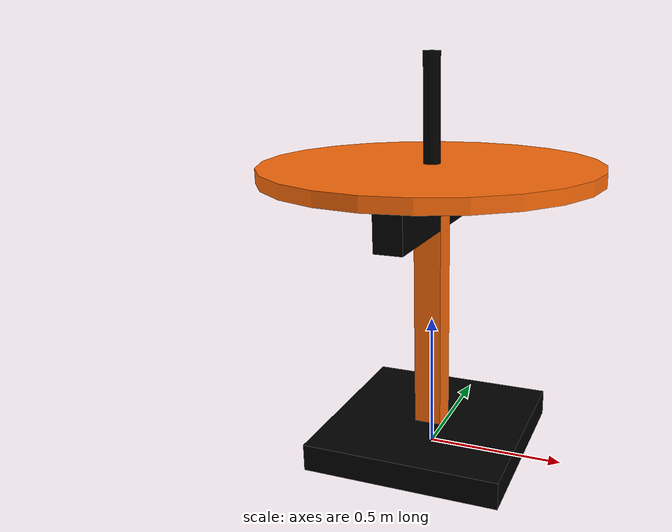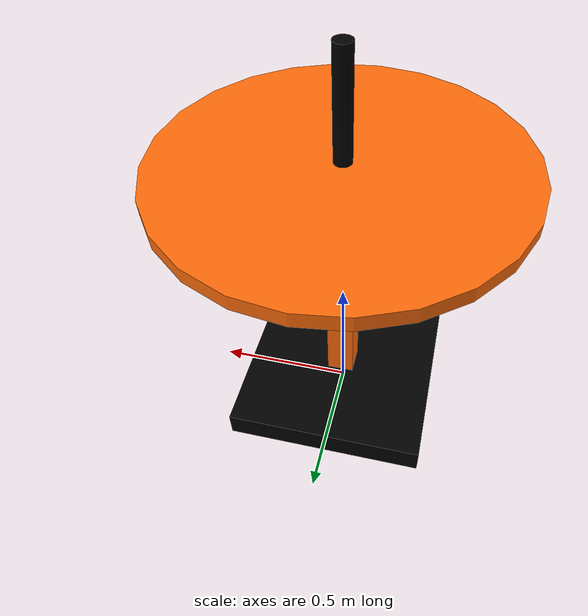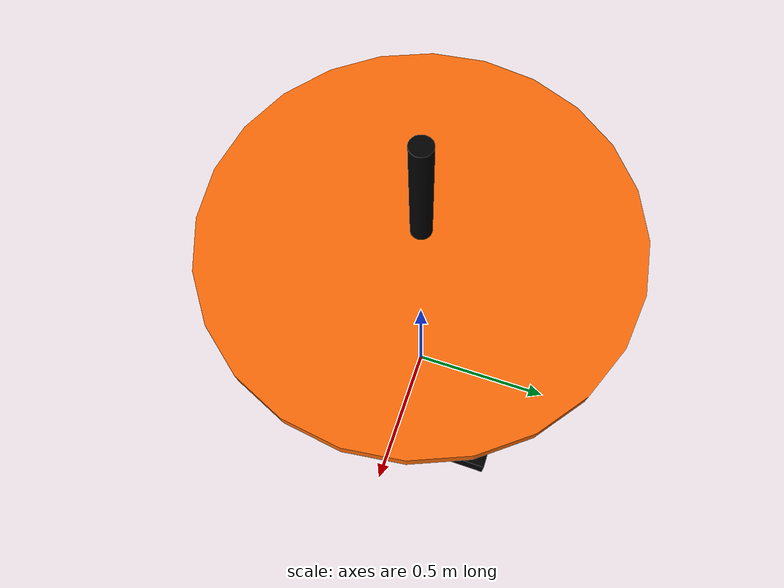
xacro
<?xml version="1.0"?>
<!-- Revolute-Revolute Manipulator -->
<robot name="antenna" xmlns:xacro="http://www.ros.org/wiki/xacro">

  <!-- Constants for robot dimensions -->
  <xacro:property name="PI" value="3.1415926535897931"/>
  <xacro:property name="mass" value="1" /> <!-- arbitrary value for mass -->
  <xacro:property name="width" value="0.1" /> <!-- Square dimensions (widthxwidth) of beams -->
  <xacro:property name="height1" value="2" /> <!-- Link 1 -->
  <xacro:property name="height2" value="1" /> <!-- Link 2 -->
  <xacro:property name="height3" value="1" /> <!-- Link 3 -->
  <xacro:property name="axel_offset" value="0.05" /> <!-- Space btw top of beam and the each joint -->

  <!-- Import all Gazebo-customization elements, including Gazebo colors -->
  <xacro:include filename="$(find antenna_description)/urdf/antenna.gazebo" />
  <!-- Import Rviz colors -->
  <xacro:include filename="$(find antenna_description)/urdf/materials.xacro" />

  <!-- Used for fixing robot to Gazebo 'base_link' -->
  <link name="world"/>

  <joint name="fixed" type="fixed">
    <parent link="world"/>
    <child link="link1"/>
  </joint>

  <!-- Base Link -->
  <link name="link1">
    <collision>
      <origin xyz="0 0 0.05" rpy="0 0 0"/>
      <geometry>
	<box size="0.72 0.72 0.1"/>
      </geometry>
    </collision>

    <visual>
      <origin xyz="0 0 0.05" rpy="0 0 0"/>
      <geometry>
	<box size="0.72 0.72 0.1"/>
      </geometry>
      <material name="black"/>
    </visual>

    <inertial>
      <origin xyz="0 0 0.05" rpy="0 0 0"/>
      <mass value="${mass}"/>
      <inertia
	  ixx="1" ixy="0.0" ixz="0.0"
	  iyy="1" iyz="0.0"
	  izz="1"/>
    </inertial>
  </link>

  <joint name="joint1" type="continuous">
    <parent link="link1"/>
    <child link="link2"/>
    <origin xyz="0 0 0.5" rpy="0 0 0"/>
    <axis xyz="0 0 1"/>
    <dynamics damping="0.7"/>
  </joint>

  <!-- Middle Link -->
  <link name="link2">
    <collision>
      <origin xyz="0 0 0" rpy="0 0 0"/>
      <geometry>
	<box size="0.1 0.1 0.8"/>
      </geometry>
    </collision>

    <visual>
      <origin xyz="0 0 0" rpy="0 0 0"/>
      <geometry>
	<box size="0.1 0.1 0.8"/>
      </geometry>
      <material name="orange"/>
    </visual>

    <inertial>
      <origin xyz="0 0 0.4" rpy="0 0 0"/>
      <mass value="4.69"/>
      <inertia
	  ixx="0.25" ixy="0.0" ixz="0.0"
	  iyy="0.25" iyz="0.0"
	  izz="0.006"/>
    </inertial>
  </link>

  <joint name="joint2" type="revolute">
    <parent link="link2"/>
    <child link="link3"/>
    <origin xyz="0 0 0.45" rpy="0 0 0"/>
    <axis xyz="0 1 0"/>
    <limit effort="30" lower="-1.571" upper="1.571" velocity="1.571"/>
    <dynamics damping="0.7"/>
  </joint>

  <!-- Top Link -->
  <link name="link3">
    <collision>
      <origin xyz="0 0 0" rpy="0 0 0"/>
      <geometry>
	<box size="0.1 0.8 0.2"/>
      </geometry>
    </collision>

    <visual>
      <origin xyz="0 0 0" rpy="0 0 0"/>
      <geometry>
	<box size="0.1 0.8 0.2"/>
      </geometry>
      <material name="black"/>
    </visual>

    <inertial>
      <origin xyz="0 0 0.1" rpy="0 0 0"/>
      <mass value="1.56"/>
      <inertia
	  ixx="0.0884" ixy="0.0" ixz="0.0"
	  iyy="0.0065" iyz="0.0"
	  izz="0.0845"/>
    </inertial>
  </link>

  <joint name="joint3" type="fixed">
    <parent link="link3"/>
    <child link="link4"/>
  </joint>

  <link name="link4">
    <collision>
      <origin xyz="0 0 0.1" rpy="0 0 0"/>
      <geometry>
        <cylinder length="0.05" radius="0.6"/>
      </geometry>
    </collision>

    <visual>
      <origin xyz="0 0 0.1" rpy="0 0 0"/>
      <geometry>
        <cylinder length="0.05" radius="0.6"/>
      </geometry>
      <material name="orange"/>
    </visual>

    <inertial>
      <mass value="4" />
      <origin xyz="0 0 0.025" rpy="0 0 0"/>
      <inertia ixx="0.00083" ixy="0" ixz="0" iyy="0.00083" iyz="0" izz="0.00083" />
    </inertial>
  </link>

  <joint name="joint4" type="fixed">
    <parent link="link4"/>
    <child link="link5"/>
  </joint>

  <!-- Camera -->
  <link name="link5">
    <collision>
      <origin xyz="0 0 0.25" rpy="0 0 0"/>
      <geometry>
        <cylinder length="0.5" radius="0.03"/>
      </geometry>
    </collision>

    <visual>
      <origin xyz="0 0 0.25" rpy="0 0 0"/>
      <geometry>
        <cylinder length="0.5" radius="0.03"/>
      </geometry>
      <material name="black"/>
    </visual>

    <inertial>
      <mass value="0.05" />
      <origin xyz="0 0 0.25" rpy="0 0 0"/>
      <inertia ixx="0.004" ixy="0" ixz="0" iyy="0.004" iyz="0" izz="0.004" />
    </inertial>
  </link>

  <!-- generate an optical frame http://www.ros.org/reps/rep-0103.html#suffix-frames
      so that ros and opencv can operate on the camera frame correctly -->

  <transmission name="tran1">
    <type>transmission_interface/SimpleTransmission</type>
    <joint name="joint1">
      <hardwareInterface>hardware_interface/EffortJointInterface</hardwareInterface>
    </joint>
    <actuator name="motor1">
      <hardwareInterface>hardware_interface/EffortJointInterface</hardwareInterface>
      <mechanicalReduction>1</mechanicalReduction>
    </actuator>
  </transmission>

  <transmission name="tran2">
    <type>transmission_interface/SimpleTransmission</type>
    <joint name="joint2">
      <hardwareInterface>hardware_interface/EffortJointInterface</hardwareInterface>
    </joint>
    <actuator name="motor2">
      <hardwareInterface>hardware_interface/EffortJointInterface</hardwareInterface>
      <mechanicalReduction>1</mechanicalReduction>
    </actuator>
  </transmission>
</robot>

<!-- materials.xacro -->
<robot>

  <material name="black">
    <color rgba="0.0 0.0 0.0 1.0"/>
  </material>

  <material name="blue">
    <color rgba="0.0 0.0 0.8 1.0"/>
  </material>

  <material name="green">
    <color rgba="0.0 0.8 0.0 1.0"/>
  </material>

  <material name="grey">
    <color rgba="250 250 250 1.0"/>
  </material>

  <material name="orange">
    <color rgba="${255/255} ${108/255} ${10/255} 1.0"/>
  </material>

  <material name="brown">
    <color rgba="${222/255} ${207/255} ${195/255} 1.0"/>
  </material>

  <material name="red">
    <color rgba="0.8 0.0 0.0 1.0"/>
  </material>

  <material name="white">
    <color rgba="1.0 1.0 1.0 1.0"/>
  </material>

</robot>
